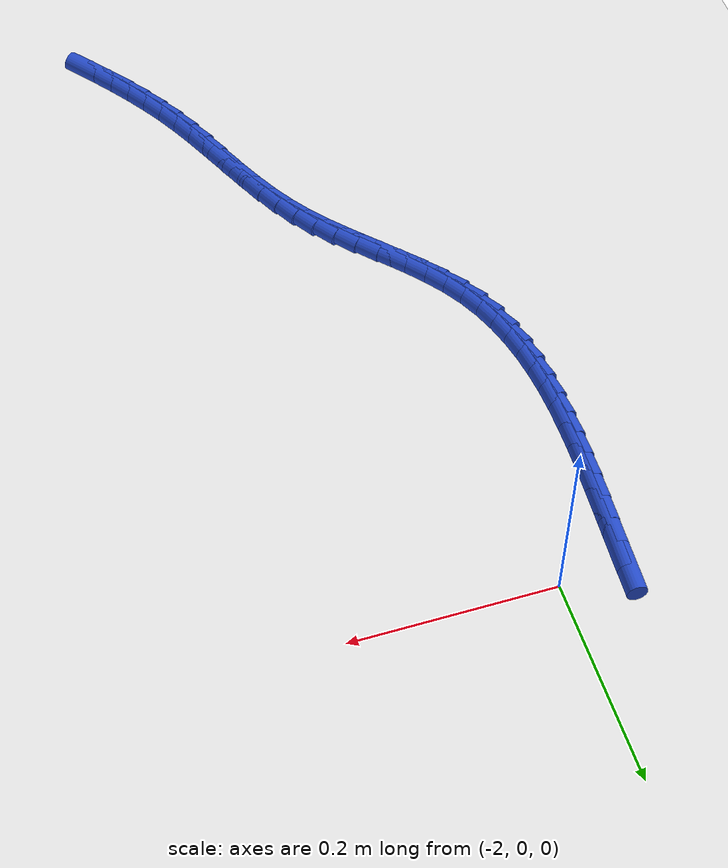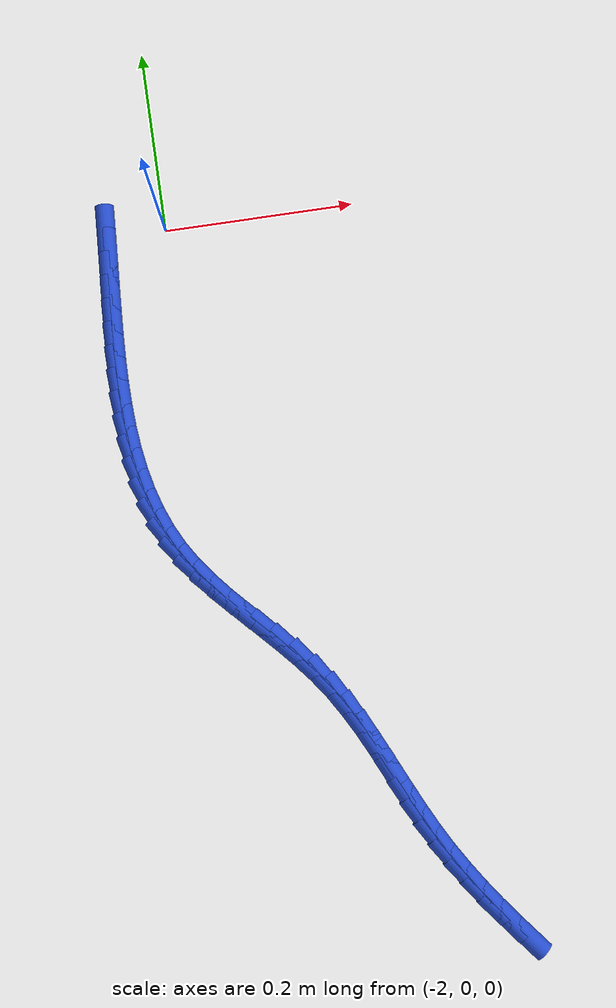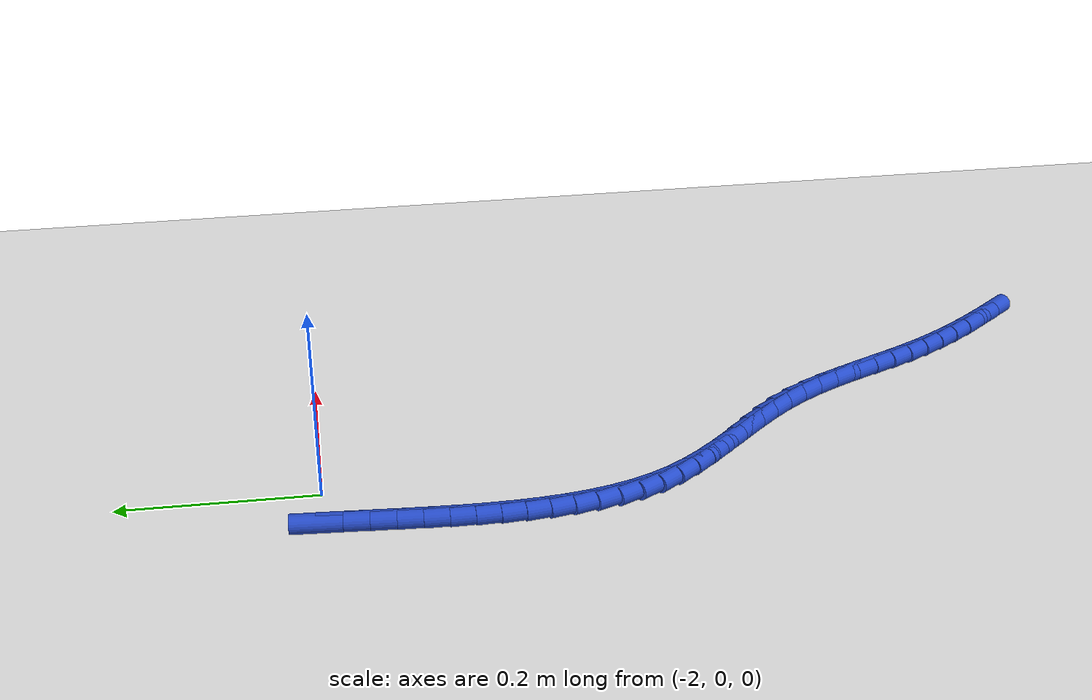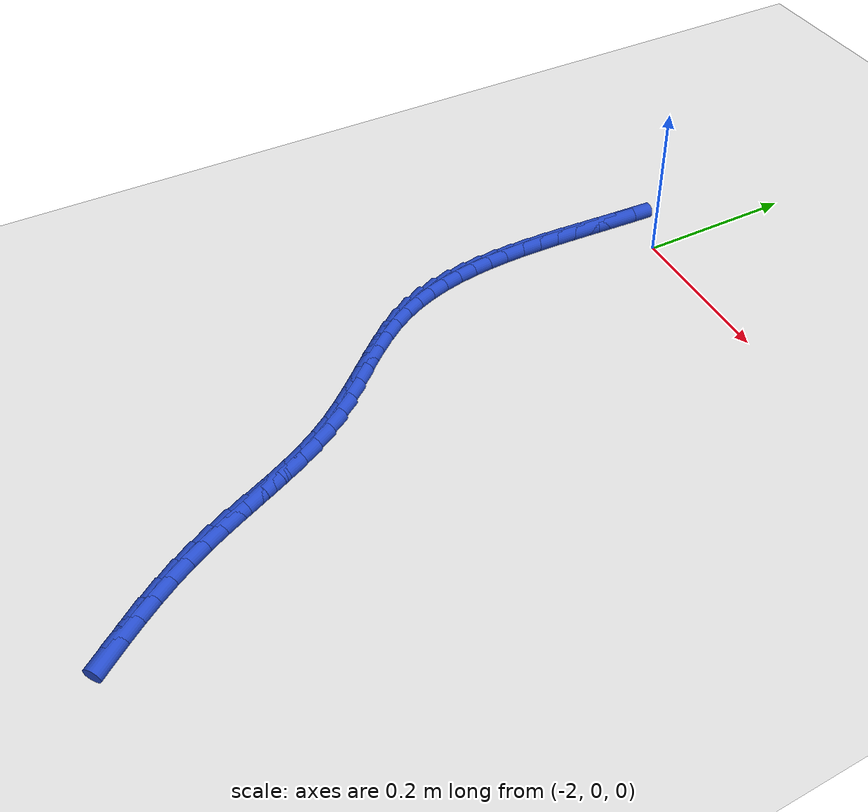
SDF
<sdf version="1.6">
 <world name="default">
  <model name="ground_plane">
   <static>1</static>
   <link name="link">
    <collision name="collision">
     <geometry><plane><normal>0 0 1</normal><size>100 100</size></plane></geometry>
     <surface><friction><ode><mu>100</mu><mu2>50</mu2></ode></friction></surface>
    </collision>
    <visual name="visual">
     <cast_shadows>0</cast_shadows>
     <geometry><plane><normal>0 0 1</normal><size>100 100</size></plane></geometry>
     <material>
      <script><uri>file://media/materials/scripts/gazebo.material</uri><name>Gazebo/WhiteGlow</name></script>
     </material>
    </visual>
   </link>
  </model>
  <model name="line">
   <link name="link_140">
    <pose>-2.0627257523285363 -0.00761527493895802 0.01 0 1.57 1.517461716283724</pose>
    <collision name="collision">
     <geometry><cylinder><radius>0.01</radius><length>0.08</length></cylinder></geometry>
    </collision>
    <visual name="visual">
     <material>
      <script><name>Gazebo/Blue</name><uri>file://media/materials/scripts/gazebo.material</uri></script>
     </material>
     <geometry><cylinder><radius>0.01</radius><length>0.08</length></cylinder></geometry>
    </visual>
   </link>
   <link name="link_141">
    <pose>-2.0640893690714566 -0.033158229354226444 0.01 0 1.57 1.5136140118420833</pose>
    <collision name="collision">
     <geometry><cylinder><radius>0.01</radius><length>0.08</length></cylinder></geometry>
    </collision>
    <visual name="visual">
     <material>
      <script><name>Gazebo/Blue</name><uri>file://media/materials/scripts/gazebo.material</uri></script>
     </material>
     <geometry><cylinder><radius>0.01</radius><length>0.08</length></cylinder></geometry>
    </visual>
   </link>
   <link name="link_142">
    <pose>-2.06555044056962 -0.05868148201094569 0.01 0 1.57 1.5159674080550969</pose>
    <collision name="collision">
     <geometry><cylinder><radius>0.01</radius><length>0.08</length></cylinder></geometry>
    </collision>
    <visual name="visual">
     <material>
      <script><name>Gazebo/Blue</name><uri>file://media/materials/scripts/gazebo.material</uri></script>
     </material>
     <geometry><cylinder><radius>0.01</radius><length>0.08</length></cylinder></geometry>
    </visual>
   </link>
   <link name="link_143">
    <pose>-2.066946532156564 -0.08411864832561845 0.01 0 1.57 1.5246084720523658</pose>
    <collision name="collision">
     <geometry><cylinder><radius>0.01</radius><length>0.08</length></cylinder></geometry>
    </collision>
    <visual name="visual">
     <material>
      <script><name>Gazebo/Blue</name><uri>file://media/materials/scripts/gazebo.material</uri></script>
     </material>
     <geometry><cylinder><radius>0.01</radius><length>0.08</length></cylinder></geometry>
    </visual>
   </link>
   <link name="link_144">
    <pose>-2.068115209165828 -0.10940334371474748 0.01 0 1.57 1.539735038572083</pose>
    <collision name="collision">
     <geometry><cylinder><radius>0.01</radius><length>0.08</length></cylinder></geometry>
    </collision>
    <visual name="visual">
     <material>
      <script><name>Gazebo/Blue</name><uri>file://media/materials/scripts/gazebo.material</uri></script>
     </material>
     <geometry><cylinder><radius>0.01</radius><length>0.08</length></cylinder></geometry>
    </visual>
   </link>
   <link name="link_145">
    <pose>-2.0688940369309528 -0.13446918359483553 0.01 0 1.57 1.5616545971522429</pose>
    <collision name="collision">
     <geometry><cylinder><radius>0.01</radius><length>0.08</length></cylinder></geometry>
    </collision>
    <visual name="visual">
     <material>
      <script><name>Gazebo/Blue</name><uri>file://media/materials/scripts/gazebo.material</uri></script>
     </material>
     <geometry><cylinder><radius>0.01</radius><length>0.08</length></cylinder></geometry>
    </visual>
   </link>
   <link name="link_146">
    <pose>-2.0691205807854773 -0.15924978338238613 0.01 0 1.57 -1.5508155558571821</pose>
    <collision name="collision">
     <geometry><cylinder><radius>0.01</radius><length>0.08</length></cylinder></geometry>
    </collision>
    <visual name="visual">
     <material>
      <script><name>Gazebo/Blue</name><uri>file://media/materials/scripts/gazebo.material</uri></script>
     </material>
     <geometry><cylinder><radius>0.01</radius><length>0.08</length></cylinder></geometry>
    </visual>
   </link>
   <link name="link_147">
    <pose>-2.0686324060629406 -0.18367875849390047 0.01 0 1.57 -1.513994810012476</pose>
    <collision name="collision">
     <geometry><cylinder><radius>0.01</radius><length>0.08</length></cylinder></geometry>
    </collision>
    <visual name="visual">
     <material>
      <script><name>Gazebo/Blue</name><uri>file://media/materials/scripts/gazebo.material</uri></script>
     </material>
     <geometry><cylinder><radius>0.01</radius><length>0.08</length></cylinder></geometry>
    </visual>
   </link>
   <link name="link_148">
    <pose>-2.067267078096884 -0.20768972434588212 0.01 0 1.57 -1.4689288923332975</pose>
    <collision name="collision">
     <geometry><cylinder><radius>0.01</radius><length>0.08</length></cylinder></geometry>
    </collision>
    <visual name="visual">
     <material>
      <script><name>Gazebo/Blue</name><uri>file://media/materials/scripts/gazebo.material</uri></script>
     </material>
     <geometry><cylinder><radius>0.01</radius><length>0.08</length></cylinder></geometry>
    </visual>
   </link>
   <link name="link_149">
    <pose>-2.064862162220845 -0.23121629635483376 0.01 0 1.57 -1.4150786353840534</pose>
    <collision name="collision">
     <geometry><cylinder><radius>0.01</radius><length>0.08</length></cylinder></geometry>
    </collision>
    <visual name="visual">
     <material>
      <script><name>Gazebo/Blue</name><uri>file://media/materials/scripts/gazebo.material</uri></script>
     </material>
     <geometry><cylinder><radius>0.01</radius><length>0.08</length></cylinder></geometry>
    </visual>
   </link>
   <link name="link_150">
    <pose>-2.061255223768365 -0.25419208993725817 0.01 0 1.57 -1.3520075719631408</pose>
    <collision name="collision">
     <geometry><cylinder><radius>0.01</radius><length>0.08</length></cylinder></geometry>
    </collision>
    <visual name="visual">
     <material>
      <script><name>Gazebo/Blue</name><uri>file://media/materials/scripts/gazebo.material</uri></script>
     </material>
     <geometry><cylinder><radius>0.01</radius><length>0.08</length></cylinder></geometry>
    </visual>
   </link>
   <link name="link_151">
    <pose>-2.0562838280729827 -0.27655072050965823 0.01 0 1.57 -1.27951889172991</pose>
    <collision name="collision">
     <geometry><cylinder><radius>0.01</radius><length>0.08</length></cylinder></geometry>
    </collision>
    <visual name="visual">
     <material>
      <script><name>Gazebo/Blue</name><uri>file://media/materials/scripts/gazebo.material</uri></script>
     </material>
     <geometry><cylinder><radius>0.01</radius><length>0.08</length></cylinder></geometry>
    </visual>
   </link>
   <link name="link_152">
    <pose>-2.049785540468237 -0.29822580348853633 0.01 0 1.57 -1.197828842349011</pose>
    <collision name="collision">
     <geometry><cylinder><radius>0.01</radius><length>0.08</length></cylinder></geometry>
    </collision>
    <visual name="visual">
     <material>
      <script><name>Gazebo/Blue</name><uri>file://media/materials/scripts/gazebo.material</uri></script>
     </material>
     <geometry><cylinder><radius>0.01</radius><length>0.08</length></cylinder></geometry>
    </visual>
   </link>
   <link name="link_153">
    <pose>-2.0415979262876682 -0.31915095429039564 0.01 0 1.57 -1.107747304379114</pose>
    <collision name="collision">
     <geometry><cylinder><radius>0.01</radius><length>0.08</length></cylinder></geometry>
    </collision>
    <visual name="visual">
     <material>
      <script><name>Gazebo/Blue</name><uri>file://media/materials/scripts/gazebo.material</uri></script>
     </material>
     <geometry><cylinder><radius>0.01</radius><length>0.08</length></cylinder></geometry>
    </visual>
   </link>
   <link name="link_154">
    <pose>-2.031558550864816 -0.33925978833173853 0.01 0 1.57 -1.011690623828567</pose>
    <collision name="collision">
     <geometry><cylinder><radius>0.01</radius><length>0.08</length></cylinder></geometry>
    </collision>
    <visual name="visual">
     <material>
      <script><name>Gazebo/Blue</name><uri>file://media/materials/scripts/gazebo.material</uri></script>
     </material>
     <geometry><cylinder><radius>0.01</radius><length>0.08</length></cylinder></geometry>
    </visual>
   </link>
   <link name="link_155">
    <pose>-2.019523203060369 -0.3584946657796528 0.01 0 1.57 -0.9268377993066247</pose>
    <collision name="collision">
     <geometry><cylinder><radius>0.01</radius><length>0.08</length></cylinder></geometry>
    </collision>
    <visual name="visual">
     <material>
      <script><name>Gazebo/Blue</name><uri>file://media/materials/scripts/gazebo.material</uri></script>
     </material>
     <geometry><cylinder><radius>0.01</radius><length>0.08</length></cylinder></geometry>
    </visual>
   </link>
   <link name="link_156">
    <pose>-2.0056674571441913 -0.37695139918290477 0.01 0 1.57 -0.8660315877973795</pose>
    <collision name="collision">
     <geometry><cylinder><radius>0.01</radius><length>0.08</length></cylinder></geometry>
    </collision>
    <visual name="visual">
     <material>
      <script><name>Gazebo/Blue</name><uri>file://media/materials/scripts/gazebo.material</uri></script>
     </material>
     <geometry><cylinder><radius>0.01</radius><length>0.08</length></cylinder></geometry>
    </visual>
   </link>
   <link name="link_157">
    <pose>-1.990439622081595 -0.39485667569361577 0.01 0 1.57 -0.8281212475879265</pose>
    <collision name="collision">
     <geometry><cylinder><radius>0.01</radius><length>0.08</length></cylinder></geometry>
    </collision>
    <visual name="visual">
     <material>
      <script><name>Gazebo/Blue</name><uri>file://media/materials/scripts/gazebo.material</uri></script>
     </material>
     <geometry><cylinder><radius>0.01</radius><length>0.08</length></cylinder></geometry>
    </visual>
   </link>
   <link name="link_158">
    <pose>-1.9742967454421207 -0.41244137577477297 0.01 0 1.57 -0.8116162496740785</pose>
    <collision name="collision">
     <geometry><cylinder><radius>0.01</radius><length>0.08</length></cylinder></geometry>
    </collision>
    <visual name="visual">
     <material>
      <script><name>Gazebo/Blue</name><uri>file://media/materials/scripts/gazebo.material</uri></script>
     </material>
     <geometry><cylinder><radius>0.01</radius><length>0.08</length></cylinder></geometry>
    </visual>
   </link>
   <link name="link_159">
    <pose>-1.9576958747953106 -0.42993637988936345 0.01 0 1.57 -0.8156001854317594</pose>
    <collision name="collision">
     <geometry><cylinder><radius>0.01</radius><length>0.08</length></cylinder></geometry>
    </collision>
    <visual name="visual">
     <material>
      <script><name>Gazebo/Blue</name><uri>file://media/materials/scripts/gazebo.material</uri></script>
     </material>
     <geometry><cylinder><radius>0.01</radius><length>0.08</length></cylinder></geometry>
    </visual>
   </link>
   <link name="link_160">
    <pose>-1.9410940577107032 -0.44757256850037436 0.01 0 1.57 -0.8398777624507621</pose>
    <collision name="collision">
     <geometry><cylinder><radius>0.01</radius><length>0.08</length></cylinder></geometry>
    </collision>
    <visual name="visual">
     <material>
      <script><name>Gazebo/Blue</name><uri>file://media/materials/scripts/gazebo.material</uri></script>
     </material>
     <geometry><cylinder><radius>0.01</radius><length>0.08</length></cylinder></geometry>
    </visual>
   </link>
   <link name="link_161">
    <pose>-1.9249483417578392 -0.4655808220707929 0.01 0 1.57 -0.8848987465704069</pose>
    <collision name="collision">
     <geometry><cylinder><radius>0.01</radius><length>0.08</length></cylinder></geometry>
    </collision>
    <visual name="visual">
     <material>
      <script><name>Gazebo/Blue</name><uri>file://media/materials/scripts/gazebo.material</uri></script>
     </material>
     <geometry><cylinder><radius>0.01</radius><length>0.08</length></cylinder></geometry>
    </visual>
   </link>
   <link name="link_162">
    <pose>-1.9097157745062598 -0.484192021063606 0.01 0 1.57 -0.9507986436466737</pose>
    <collision name="collision">
     <geometry><cylinder><radius>0.01</radius><length>0.08</length></cylinder></geometry>
    </collision>
    <visual name="visual">
     <material>
      <script><name>Gazebo/Blue</name><uri>file://media/materials/scripts/gazebo.material</uri></script>
     </material>
     <geometry><cylinder><radius>0.01</radius><length>0.08</length></cylinder></geometry>
    </visual>
   </link>
   <link name="link_163">
    <pose>-1.8958394036268065 -0.5036292865065303 0.01 0 1.57 -1.0206973810625568</pose>
    <collision name="collision">
     <geometry><cylinder><radius>0.01</radius><length>0.08</length></cylinder></geometry>
    </collision>
    <visual name="visual">
     <material>
      <script><name>Gazebo/Blue</name><uri>file://media/materials/scripts/gazebo.material</uri></script>
     </material>
     <geometry><cylinder><radius>0.01</radius><length>0.08</length></cylinder></geometry>
    </visual>
   </link>
   <link name="link_164">
    <pose>-1.8833995500585918 -0.5239146983586015 0.01 0 1.57 -1.075600942643579</pose>
    <collision name="collision">
     <geometry><cylinder><radius>0.01</radius><length>0.08</length></cylinder></geometry>
    </collision>
    <visual name="visual">
     <material>
      <script><name>Gazebo/Blue</name><uri>file://media/materials/scripts/gazebo.material</uri></script>
     </material>
     <geometry><cylinder><radius>0.01</radius><length>0.08</length></cylinder></geometry>
    </visual>
   </link>
   <link name="link_165">
    <pose>-1.8720896251291572 -0.5448558921638453 0.01 0 1.57 -1.1143410336662367</pose>
    <collision name="collision">
     <geometry><cylinder><radius>0.01</radius><length>0.08</length></cylinder></geometry>
    </collision>
    <visual name="visual">
     <material>
      <script><name>Gazebo/Blue</name><uri>file://media/materials/scripts/gazebo.material</uri></script>
     </material>
     <geometry><cylinder><radius>0.01</radius><length>0.08</length></cylinder></geometry>
    </visual>
   </link>
   <link name="link_166">
    <pose>-1.861584197374749 -0.5662500598607665 0.01 0 1.57 -1.1369927769254793</pose>
    <collision name="collision">
     <geometry><cylinder><radius>0.01</radius><length>0.08</length></cylinder></geometry>
    </collision>
    <visual name="visual">
     <material>
      <script><name>Gazebo/Blue</name><uri>file://media/materials/scripts/gazebo.material</uri></script>
     </material>
     <geometry><cylinder><radius>0.01</radius><length>0.08</length></cylinder></geometry>
    </visual>
   </link>
   <link name="link_167">
    <pose>-1.8515578353316118 -0.5878943933878682 0.01 0 1.57 -1.1436772958034875</pose>
    <collision name="collision">
     <geometry><cylinder><radius>0.01</radius><length>0.08</length></cylinder></geometry>
    </collision>
    <visual name="visual">
     <material>
      <script><name>Gazebo/Blue</name><uri>file://media/materials/scripts/gazebo.material</uri></script>
     </material>
     <geometry><cylinder><radius>0.01</radius><length>0.08</length></cylinder></geometry>
    </visual>
   </link>
   <link name="link_168">
    <pose>-1.8416851075359923 -0.6095860846836544 0.01 0 1.57 -1.1343873205025248</pose>
    <collision name="collision">
     <geometry><cylinder><radius>0.01</radius><length>0.08</length></cylinder></geometry>
    </collision>
    <visual name="visual">
     <material>
      <script><name>Gazebo/Blue</name><uri>file://media/materials/scripts/gazebo.material</uri></script>
     </material>
     <geometry><cylinder><radius>0.01</radius><length>0.08</length></cylinder></geometry>
    </visual>
   </link>
   <link name="link_169">
    <pose>-1.831640582524136 -0.6311223256866285 0.01 0 1.57 -1.1089347147392121</pose>
    <collision name="collision">
     <geometry><cylinder><radius>0.01</radius><length>0.08</length></cylinder></geometry>
    </collision>
    <visual name="visual">
     <material>
      <script><name>Gazebo/Blue</name><uri>file://media/materials/scripts/gazebo.material</uri></script>
     </material>
     <geometry><cylinder><radius>0.01</radius><length>0.08</length></cylinder></geometry>
    </visual>
   </link>
   <link name="link_170">
    <pose>-1.8210988288322882 -0.6523003083352945 0.01 0 1.57 -1.0682054030415828</pose>
    <collision name="collision">
     <geometry><cylinder><radius>0.01</radius><length>0.08</length></cylinder></geometry>
    </collision>
    <visual name="visual">
     <material>
      <script><name>Gazebo/Blue</name><uri>file://media/materials/scripts/gazebo.material</uri></script>
     </material>
     <geometry><cylinder><radius>0.01</radius><length>0.08</length></cylinder></geometry>
    </visual>
   </link>
   <link name="link_171">
    <pose>-1.809757244435099 -0.6729336968290631 0.01 0 1.57 -1.0243428083360246</pose>
    <collision name="collision">
     <geometry><cylinder><radius>0.01</radius><length>0.08</length></cylinder></geometry>
    </collision>
    <visual name="visual">
     <material>
      <script><name>Gazebo/Blue</name><uri>file://media/materials/scripts/gazebo.material</uri></script>
     </material>
     <geometry><cylinder><radius>0.01</radius><length>0.08</length></cylinder></geometry>
    </visual>
   </link>
   <link name="link_172">
    <pose>-1.7975485668852316 -0.6930059613372636 0.01 0 1.57 -0.9848728566920689</pose>
    <collision name="collision">
     <geometry><cylinder><radius>0.01</radius><length>0.08</length></cylinder></geometry>
    </collision>
    <visual name="visual">
     <material>
      <script><name>Gazebo/Blue</name><uri>file://media/materials/scripts/gazebo.material</uri></script>
     </material>
     <geometry><cylinder><radius>0.01</radius><length>0.08</length></cylinder></geometry>
    </visual>
   </link>
   <link name="link_173">
    <pose>-1.7845442156479006 -0.7126006360170581 0.01 0 1.57 -0.9501617412926534</pose>
    <collision name="collision">
     <geometry><cylinder><radius>0.01</radius><length>0.08</length></cylinder></geometry>
    </collision>
    <visual name="visual">
     <material>
      <script><name>Gazebo/Blue</name><uri>file://media/materials/scripts/gazebo.material</uri></script>
     </material>
     <geometry><cylinder><radius>0.01</radius><length>0.08</length></cylinder></geometry>
    </visual>
   </link>
   <link name="link_174">
    <pose>-1.7708173966010843 -0.7318025439866662 0.01 0 1.57 -0.9203669179851289</pose>
    <collision name="collision">
     <geometry><cylinder><radius>0.01</radius><length>0.08</length></cylinder></geometry>
    </collision>
    <visual name="visual">
     <material>
      <script><name>Gazebo/Blue</name><uri>file://media/materials/scripts/gazebo.material</uri></script>
     </material>
     <geometry><cylinder><radius>0.01</radius><length>0.08</length></cylinder></geometry>
    </visual>
   </link>
   <link name="link_175">
    <pose>-1.756441315622758 -0.7506965083643092 0.01 0 1.57 -0.8955506304569999</pose>
    <collision name="collision">
     <geometry><cylinder><radius>0.01</radius><length>0.08</length></cylinder></geometry>
    </collision>
    <visual name="visual">
     <material>
      <script><name>Gazebo/Blue</name><uri>file://media/materials/scripts/gazebo.material</uri></script>
     </material>
     <geometry><cylinder><radius>0.01</radius><length>0.08</length></cylinder></geometry>
    </visual>
   </link>
  </model>
 </world>
</sdf>
